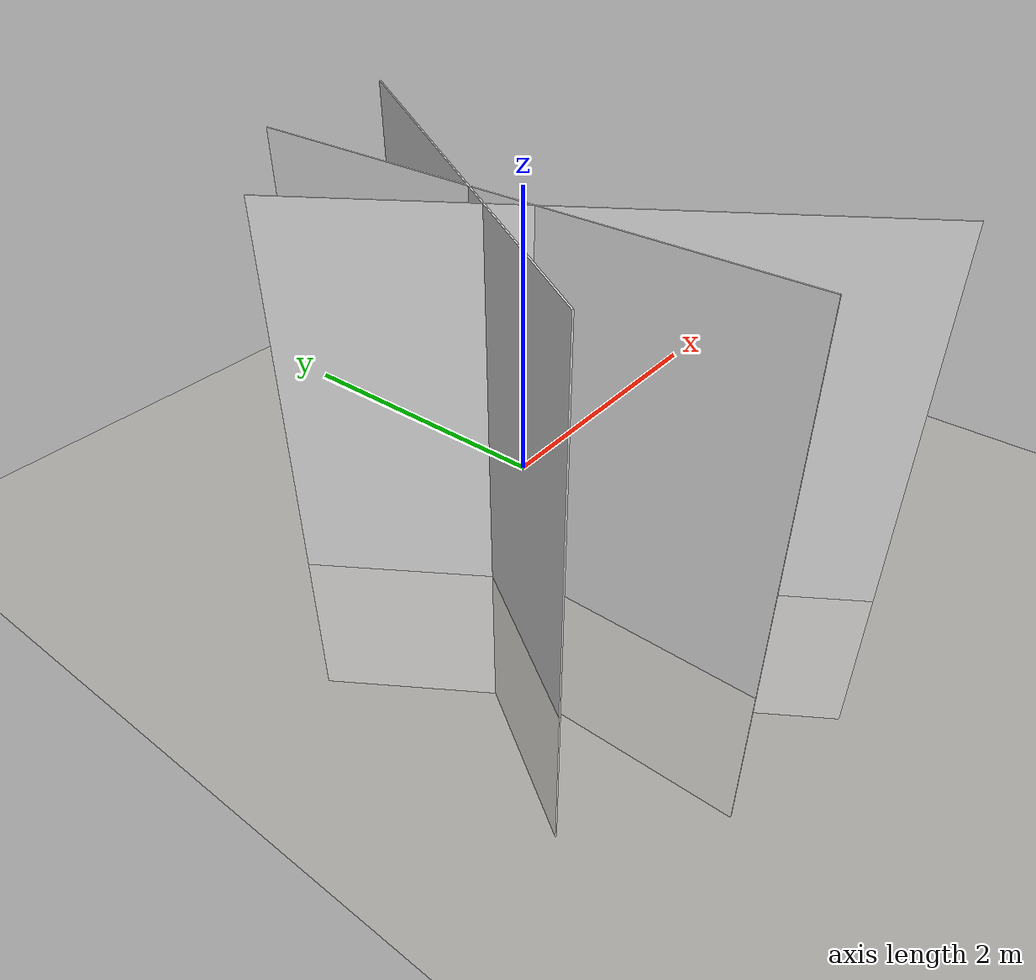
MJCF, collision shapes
<mujoco model="ur5e_scene">

  <compiler angle="radian" meshdir="assets" texturedir="assets" autolimits="true"/>

  <statistic center="0.3 0 0.4" extent="0.8"/>

  <visual>
    <headlight diffuse="0.6 0.6 0.6"  ambient="0.1 0.1 0.1" specular="0 0 0"/>
    <rgba haze="0.15 0.25 0.35 1"/>
    <global azimuth="120" elevation="-20"/>
  </visual>

  <default>
    <default class="visual_scene">
      <geom contype="0" conaffinity="0"/>
    </default>
  </default>

  <asset>
    <mesh name="table_top" scale="1.25 1.67 10" file="table_top.STL"/>
    <mesh name="table_leg" scale="1.25 1.67 1" file="table_leg.STL"/>
    <texture type="2d" name="floor" file="floor.png" />
    <texture type="skybox" builtin="gradient" rgb1="0.3 0.5 0.7" rgb2="0 0 0" width="512"
        height="3072"/>
    <texture type="2d" name="groundplane" builtin="checker" mark="edge" rgb1="0.2 0.3 0.4"
        rgb2="0.1 0.2 0.3" markrgb="0.8 0.8 0.8" width="300" height="300"/>
    <texture name="grid" type="2d" builtin="checker" rgb1=".1 .2 .3" rgb2=".2 .3 .4"
        width="300" height="300" mark="edge" markrgb=".2 .3 .4"/>
    <material name="groundplane" texture="groundplane" texuniform="true" texrepeat="5 5"
        reflectance="0.2"/>
    <material name="grid" texture="grid" texrepeat="1 1" texuniform="true" reflectance=".2"/>
    <material name="table" rgba="0.12 0.3 0.26 1"/>
    <material name="floor" texture="floor"/>
    <material name="seat_mat" rgba="0.533 0.529 0.514 1" specular="0.5" shininess="0.25"/>
    <material name="wall" rgba="1 1 1 1"/>
  </asset>

  <worldbody>
    <light pos="0.6 -0.1 1.5" dir="0 0.3 -1" directional="true" castshadow="false"/>

    <geom name="floor" size="0 0 0.05" pos="0 0 -0.75" type="plane" material="floor"/>

    <geom name="wall1" size="2 2 0.005" pos="-0.2 0 0" type="box" quat="0 1 0 1" material="wall"/>
    <geom name="wall2" size="2 2 0.005" pos="0 0.55 0" type="box" euler="1.57 1.0 0" material="wall"/>
    <geom name="wall3" size="2 2 0.005" pos="0 -0.55 0" type="box" euler="1.57 -1.0 0" material="wall"/>

    <!-- The desktop plane is at z=0, back edge is at x=0 -->
    <body name="table" pos="0.75 0 -0.04">
      <geom name="table_top_col" type="box" pos="0 0 0" size="0.75 0.5 0.04" rgba="0 0 0 0"/>
      <geom type="mesh" mesh="table_top" pos="0 0 -0.36" material="table" class="visual_scene"/>
      <geom type="mesh" mesh="table_leg" rgba="0.533 0.529 0.514 1" class="visual_scene"/>
      <body name='seat' pos="-0.65 0 0.04">
        <geom type="box" pos="0 0 0.0075" size="0.1 0.3 0.0075" material="seat_mat" class="visual_scene"/>
        <geom type="box" pos="0 0 0.001" size="0.1 0.5 0.001" material="seat_mat" class="visual_scene"/>
        <geom type="cylinder" pos="0 0 0.0225" size="0.075 0.0075" material="seat_mat" class="visual_scene"/>
      </body>

    </body>

    <body name="viewpoint" pos="0.6 0.0 0.2">
    </body>

    <camera name="fix_cam" mode="targetbody" target="viewpoint" pos="1.9 0 0.75" fovy="42"/>
    <camera name="track_cam" mode="targetbody" target="viewpoint" pos="1.9 0 0.75" fovy="42"/>

  </worldbody>

</mujoco>
